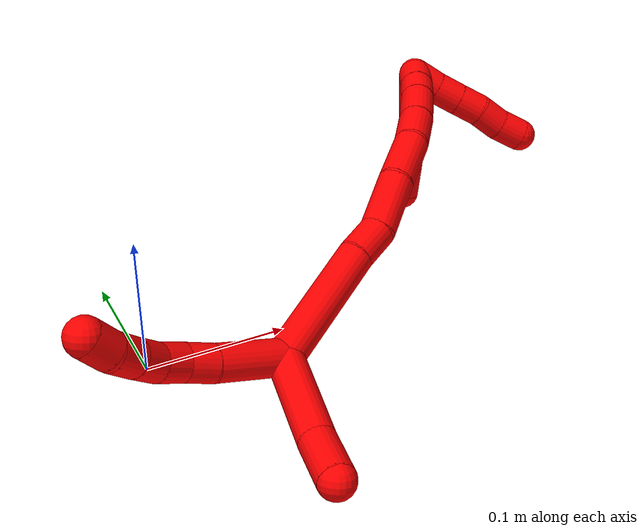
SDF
<sdf version="1.7">
 <world name="default">
  <model name="2">
   <static>0</static>
   <link name="2">
    <collision name="collision-cylinder-e_1_2_8">
     <pose>-0.024255 0.004829 0.001104 -1.34606 -1.36933 1.15393</pose>
     <geometry><cylinder><radius>0.0125</radius><length>0.049512</length></cylinder></geometry>
     <surface>
      <friction><ode><mu>1.16</mu><mu2>1.16</mu2><slip1>0</slip1><slip2>0</slip2></ode></friction>
      <contact><ode><kp>1e+06</kp><kd>1</kd><max_vel>0</max_vel><min_depth>0.001</min_depth></ode></contact>
     </surface>
    </collision>
    <visual name="visual-cylinder-e_1_2_8">
     <pose>-0.024255 0.004829 0.001104 -1.34606 -1.36933 1.15393</pose>
     <geometry><cylinder><radius>0.0125</radius><length>0.049512</length></cylinder></geometry>
     <material><ambient>1 0 0 1</ambient></material>
    </visual>
    <collision name="collision-cylinder-e_2_8_9">
     <pose>-0.058228 0.012166 0.00361 -1.06094 -1.28333 0.826054</pose>
     <geometry><cylinder><radius>0.0125</radius><length>0.020268</length></cylinder></geometry>
     <surface>
      <friction><ode><mu>1.16</mu><mu2>1.16</mu2><slip1>0</slip1><slip2>0</slip2></ode></friction>
      <contact><ode><kp>1e+06</kp><kd>1</kd><max_vel>0</max_vel><min_depth>0.001</min_depth></ode></contact>
     </surface>
    </collision>
    <visual name="visual-cylinder-e_2_8_9">
     <pose>-0.058228 0.012166 0.00361 -1.06094 -1.28333 0.826054</pose>
     <geometry><cylinder><radius>0.0125</radius><length>0.020268</length></cylinder></geometry>
     <material><ambient>1 0 0 1</ambient></material>
    </visual>
    <collision name="collision-cylinder-e_3_9_10">
     <pose>-0.077812 0.014669 0.006763 0.00283 -1.39514 -0.002372</pose>
     <geometry><cylinder><radius>0.0125</radius><length>0.020038</length></cylinder></geometry>
     <surface>
      <friction><ode><mu>1.16</mu><mu2>1.16</mu2><slip1>0</slip1><slip2>0</slip2></ode></friction>
      <contact><ode><kp>1e+06</kp><kd>1</kd><max_vel>0</max_vel><min_depth>0.001</min_depth></ode></contact>
     </surface>
    </collision>
    <visual name="visual-cylinder-e_3_9_10">
     <pose>-0.077812 0.014669 0.006763 0.00283 -1.39514 -0.002372</pose>
     <geometry><cylinder><radius>0.0125</radius><length>0.020038</length></cylinder></geometry>
     <material><ambient>1 0 0 1</ambient></material>
    </visual>
    <collision name="collision-cylinder-e_4_10_11">
     <pose>-0.096832 0.012633 0.012169 0.507286 -1.14243 -0.330169</pose>
     <geometry><cylinder><radius>0.0125</radius><length>0.020131</length></cylinder></geometry>
     <surface>
      <friction><ode><mu>1.16</mu><mu2>1.16</mu2><slip1>0</slip1><slip2>0</slip2></ode></friction>
      <contact><ode><kp>1e+06</kp><kd>1</kd><max_vel>0</max_vel><min_depth>0.001</min_depth></ode></contact>
     </surface>
    </collision>
    <visual name="visual-cylinder-e_4_10_11">
     <pose>-0.096832 0.012633 0.012169 0.507286 -1.14243 -0.330169</pose>
     <geometry><cylinder><radius>0.0125</radius><length>0.020131</length></cylinder></geometry>
     <material><ambient>1 0 0 1</ambient></material>
    </visual>
    <collision name="collision-cylinder-e_5_11_12">
     <pose>-0.114983 0.008765 0.0198 0.432751 -1.11762 -0.273187</pose>
     <geometry><cylinder><radius>0.0125</radius><length>0.02001</length></cylinder></geometry>
     <surface>
      <friction><ode><mu>1.16</mu><mu2>1.16</mu2><slip1>0</slip1><slip2>0</slip2></ode></friction>
      <contact><ode><kp>1e+06</kp><kd>1</kd><max_vel>0</max_vel><min_depth>0.001</min_depth></ode></contact>
     </surface>
    </collision>
    <visual name="visual-cylinder-e_5_11_12">
     <pose>-0.114983 0.008765 0.0198 0.432751 -1.11762 -0.273187</pose>
     <geometry><cylinder><radius>0.0125</radius><length>0.02001</length></cylinder></geometry>
     <material><ambient>1 0 0 1</ambient></material>
    </visual>
    <collision name="collision-cylinder-e_6_12_6">
     <pose>-0.132295 0.006872 0.029366 0.009993 -0.978955 -0.005324</pose>
     <geometry><cylinder><radius>0.0125</radius><length>0.020042</length></cylinder></geometry>
     <surface>
      <friction><ode><mu>1.16</mu><mu2>1.16</mu2><slip1>0</slip1><slip2>0</slip2></ode></friction>
      <contact><ode><kp>1e+06</kp><kd>1</kd><max_vel>0</max_vel><min_depth>0.001</min_depth></ode></contact>
     </surface>
    </collision>
    <visual name="visual-cylinder-e_6_12_6">
     <pose>-0.132295 0.006872 0.029366 0.009993 -0.978955 -0.005324</pose>
     <geometry><cylinder><radius>0.0125</radius><length>0.020042</length></cylinder></geometry>
     <material><ambient>1 0 0 1</ambient></material>
    </visual>
    <collision name="collision-cylinder-e_1_2_13">
     <pose>-0.008402 -0.025544 -0.017759 2.17833 -0.263759 -0.497073</pose>
     <geometry><cylinder><radius>0.0125</radius><length>0.064451</length></cylinder></geometry>
     <surface>
      <friction><ode><mu>1.16</mu><mu2>1.16</mu2><slip1>0</slip1><slip2>0</slip2></ode></friction>
      <contact><ode><kp>1e+06</kp><kd>1</kd><max_vel>0</max_vel><min_depth>0.001</min_depth></ode></contact>
     </surface>
    </collision>
    <visual name="visual-cylinder-e_1_2_13">
     <pose>-0.008402 -0.025544 -0.017759 2.17833 -0.263759 -0.497073</pose>
     <geometry><cylinder><radius>0.0125</radius><length>0.064451</length></cylinder></geometry>
     <material><ambient>1 0 0 1</ambient></material>
    </visual>
    <collision name="collision-cylinder-e_2_13_5">
     <pose>-0.02303 -0.066674 -0.04137 1.92992 -0.357907 -0.510836</pose>
     <geometry><cylinder><radius>0.0125</radius><length>0.035549</length></cylinder></geometry>
     <surface>
      <friction><ode><mu>1.16</mu><mu2>1.16</mu2><slip1>0</slip1><slip2>0</slip2></ode></friction>
      <contact><ode><kp>1e+06</kp><kd>1</kd><max_vel>0</max_vel><min_depth>0.001</min_depth></ode></contact>
     </surface>
    </collision>
    <visual name="visual-cylinder-e_2_13_5">
     <pose>-0.02303 -0.066674 -0.04137 1.92992 -0.357907 -0.510836</pose>
     <geometry><cylinder><radius>0.0125</radius><length>0.035549</length></cylinder></geometry>
     <material><ambient>1 0 0 1</ambient></material>
    </visual>
    <collision name="collision-cylinder-e_1_2_14">
     <pose>0.033775 0.004331 0.028216 -0.152287 0.869087 -0.070789</pose>
     <geometry><cylinder><radius>0.0125</radius><length>0.088445</length></cylinder></geometry>
     <surface>
      <friction><ode><mu>1.16</mu><mu2>1.16</mu2><slip1>0</slip1><slip2>0</slip2></ode></friction>
      <contact><ode><kp>1e+06</kp><kd>1</kd><max_vel>0</max_vel><min_depth>0.001</min_depth></ode></contact>
     </surface>
    </collision>
    <visual name="visual-cylinder-e_1_2_14">
     <pose>0.033775 0.004331 0.028216 -0.152287 0.869087 -0.070789</pose>
     <geometry><cylinder><radius>0.0125</radius><length>0.088445</length></cylinder></geometry>
     <material><ambient>1 0 0 1</ambient></material>
    </visual>
    <collision name="collision-cylinder-e_2_14_15">
     <pose>0.078403 0.009781 0.063507 -0.157068 0.987495 -0.084659</pose>
     <geometry><cylinder><radius>0.0125</radius><length>0.026009</length></cylinder></geometry>
     <surface>
      <friction><ode><mu>1.16</mu><mu2>1.16</mu2><slip1>0</slip1><slip2>0</slip2></ode></friction>
      <contact><ode><kp>1e+06</kp><kd>1</kd><max_vel>0</max_vel><min_depth>0.001</min_depth></ode></contact>
     </surface>
    </collision>
    <visual name="visual-cylinder-e_2_14_15">
     <pose>0.078403 0.009781 0.063507 -0.157068 0.987495 -0.084659</pose>
     <geometry><cylinder><radius>0.0125</radius><length>0.026009</length></cylinder></geometry>
     <material><ambient>1 0 0 1</ambient></material>
    </visual>
    <collision name="collision-cylinder-e_3_15_16">
     <pose>0.103526 0.017029 0.085749 -0.383913 0.717265 -0.145444</pose>
     <geometry><cylinder><radius>0.0125</radius><length>0.043413</length></cylinder></geometry>
     <surface>
      <friction><ode><mu>1.16</mu><mu2>1.16</mu2><slip1>0</slip1><slip2>0</slip2></ode></friction>
      <contact><ode><kp>1e+06</kp><kd>1</kd><max_vel>0</max_vel><min_depth>0.001</min_depth></ode></contact>
     </surface>
    </collision>
    <visual name="visual-cylinder-e_3_15_16">
     <pose>0.103526 0.017029 0.085749 -0.383913 0.717265 -0.145444</pose>
     <geometry><cylinder><radius>0.0125</radius><length>0.043413</length></cylinder></geometry>
     <material><ambient>1 0 0 1</ambient></material>
    </visual>
    <collision name="collision-cylinder-e_4_16_17">
     <pose>0.132287 0.030321 0.112622 -0.549248 0.812623 -0.241264</pose>
     <geometry><cylinder><radius>0.0125</radius><length>0.039921</length></cylinder></geometry>
     <surface>
      <friction><ode><mu>1.16</mu><mu2>1.16</mu2><slip1>0</slip1><slip2>0</slip2></ode></friction>
      <contact><ode><kp>1e+06</kp><kd>1</kd><max_vel>0</max_vel><min_depth>0.001</min_depth></ode></contact>
     </surface>
    </collision>
    <visual name="visual-cylinder-e_4_16_17">
     <pose>0.132287 0.030321 0.112622 -0.549248 0.812623 -0.241264</pose>
     <geometry><cylinder><radius>0.0125</radius><length>0.039921</length></cylinder></geometry>
     <material><ambient>1 0 0 1</ambient></material>
    </visual>
    <collision name="collision-cylinder-e_5_17_18">
     <pose>0.157826 0.045779 0.131586 -0.851861 0.786531 -0.37211</pose>
     <geometry><cylinder><radius>0.0125</radius><length>0.031208</length></cylinder></geometry>
     <surface>
      <friction><ode><mu>1.16</mu><mu2>1.16</mu2><slip1>0</slip1><slip2>0</slip2></ode></friction>
      <contact><ode><kp>1e+06</kp><kd>1</kd><max_vel>0</max_vel><min_depth>0.001</min_depth></ode></contact>
     </surface>
    </collision>
    <visual name="visual-cylinder-e_5_17_18">
     <pose>0.157826 0.045779 0.131586 -0.851861 0.786531 -0.37211</pose>
     <geometry><cylinder><radius>0.0125</radius><length>0.031208</length></cylinder></geometry>
     <material><ambient>1 0 0 1</ambient></material>
    </visual>
    <collision name="collision-cylinder-e_6_18_19">
     <pose>0.179053 0.063435 0.145735 -0.936341 0.719279 -0.375767</pose>
     <geometry><cylinder><radius>0.0125</radius><length>0.030906</length></cylinder></geometry>
     <surface>
      <friction><ode><mu>1.16</mu><mu2>1.16</mu2><slip1>0</slip1><slip2>0</slip2></ode></friction>
      <contact><ode><kp>1e+06</kp><kd>1</kd><max_vel>0</max_vel><min_depth>0.001</min_depth></ode></contact>
     </surface>
    </collision>
    <visual name="visual-cylinder-e_6_18_19">
     <pose>0.179053 0.063435 0.145735 -0.936341 0.719279 -0.375767</pose>
     <geometry><cylinder><radius>0.0125</radius><length>0.030906</length></cylinder></geometry>
     <material><ambient>1 0 0 1</ambient></material>
    </visual>
    <collision name="collision-cylinder-e_7_19_20">
     <pose>0.19554 0.079381 0.156824 -1.00311 0.679385 -0.382803</pose>
     <geometry><cylinder><radius>0.0125</radius><length>0.020071</length></cylinder></geometry>
     <surface>
      <friction><ode><mu>1.16</mu><mu2>1.16</mu2><slip1>0</slip1><slip2>0</slip2></ode></friction>
      <contact><ode><kp>1e+06</kp><kd>1</kd><max_vel>0</max_vel><min_depth>0.001</min_depth></ode></contact>
     </surface>
    </collision>
    <visual name="visual-cylinder-e_7_19_20">
     <pose>0.19554 0.079381 0.156824 -1.00311 0.679385 -0.382803</pose>
     <geometry><cylinder><radius>0.0125</radius><length>0.020071</length></cylinder></geometry>
     <material><ambient>1 0 0 1</ambient></material>
    </visual>
    <collision name="collision-cylinder-e_8_20_1">
     <pose>0.207952 0.092847 0.164972 -1.04977 0.655815 -0.389003</pose>
     <geometry><cylinder><radius>0.0125</radius><length>0.020028</length></cylinder></geometry>
     <surface>
      <friction><ode><mu>1.16</mu><mu2>1.16</mu2><slip1>0</slip1><slip2>0</slip2></ode></friction>
      <contact><ode><kp>1e+06</kp><kd>1</kd><max_vel>0</max_vel><min_depth>0.001</min_depth></ode></contact>
     </surface>
    </collision>
    <visual name="visual-cylinder-e_8_20_1">
     <pose>0.207952 0.092847 0.164972 -1.04977 0.655815 -0.389003</pose>
     <geometry><cylinder><radius>0.0125</radius><length>0.020028</length></cylinder></geometry>
     <material><ambient>1 0 0 1</ambient></material>
    </visual>
    <collision name="collision-cylinder-e_1_1_21">
     <pose>0.221102 0.09461 0.164006 2.3359 0.781525 1.5369</pose>
     <geometry><cylinder><radius>0.0125</radius><length>0.02</length></cylinder></geometry>
     <surface>
      <friction><ode><mu>1.16</mu><mu2>1.16</mu2><slip1>0</slip1><slip2>0</slip2></ode></friction>
      <contact><ode><kp>1e+06</kp><kd>1</kd><max_vel>0</max_vel><min_depth>0.001</min_depth></ode></contact>
     </surface>
    </collision>
    <visual name="visual-cylinder-e_1_1_21">
     <pose>0.221102 0.09461 0.164006 2.3359 0.781525 1.5369</pose>
     <geometry><cylinder><radius>0.0125</radius><length>0.02</length></cylinder></geometry>
     <material><ambient>1 0 0 1</ambient></material>
    </visual>
    <collision name="collision-cylinder-e_2_21_22">
     <pose>0.23534 0.083995 0.154842 2.22885 0.803054 1.42612</pose>
     <geometry><cylinder><radius>0.0125</radius><length>0.02</length></cylinder></geometry>
     <surface>
      <friction><ode><mu>1.16</mu><mu2>1.16</mu2><slip1>0</slip1><slip2>0</slip2></ode></friction>
      <contact><ode><kp>1e+06</kp><kd>1</kd><max_vel>0</max_vel><min_depth>0.001</min_depth></ode></contact>
     </surface>
    </collision>
    <visual name="visual-cylinder-e_2_21_22">
     <pose>0.23534 0.083995 0.154842 2.22885 0.803054 1.42612</pose>
     <geometry><cylinder><radius>0.0125</radius><length>0.02</length></cylinder></geometry>
     <material><ambient>1 0 0 1</ambient></material>
    </visual>
    <collision name="collision-cylinder-e_3_22_23">
     <pose>0.249778 0.073 0.146437 2.2181 0.810033 1.4223</pose>
     <geometry><cylinder><radius>0.0125</radius><length>0.02</length></cylinder></geometry>
     <surface>
      <friction><ode><mu>1.16</mu><mu2>1.16</mu2><slip1>0</slip1><slip2>0</slip2></ode></friction>
      <contact><ode><kp>1e+06</kp><kd>1</kd><max_vel>0</max_vel><min_depth>0.001</min_depth></ode></contact>
     </surface>
    </collision>
    <visual name="visual-cylinder-e_3_22_23">
     <pose>0.249778 0.073 0.146437 2.2181 0.810033 1.4223</pose>
     <geometry><cylinder><radius>0.0125</radius><length>0.02</length></cylinder></geometry>
     <material><ambient>1 0 0 1</ambient></material>
    </visual>
    <collision name="collision-cylinder-e_4_23_24">
     <pose>0.264222 0.06318 0.136849 2.46955 0.803936 1.76607</pose>
     <geometry><cylinder><radius>0.0125</radius><length>0.02</length></cylinder></geometry>
     <surface>
      <friction><ode><mu>1.16</mu><mu2>1.16</mu2><slip1>0</slip1><slip2>0</slip2></ode></friction>
      <contact><ode><kp>1e+06</kp><kd>1</kd><max_vel>0</max_vel><min_depth>0.001</min_depth></ode></contact>
     </surface>
    </collision>
    <visual name="visual-cylinder-e_4_23_24">
     <pose>0.264222 0.06318 0.136849 2.46955 0.803936 1.76607</pose>
     <geometry><cylinder><radius>0.0125</radius><length>0.02</length></cylinder></geometry>
     <material><ambient>1 0 0 1</ambient></material>
    </visual>
    <collision name="collision-cylinder-e_5_24_4">
     <pose>0.279021 0.053698 0.127466 2.22434 0.862921 1.50092</pose>
     <geometry><cylinder><radius>0.0125</radius><length>0.02</length></cylinder></geometry>
     <surface>
      <friction><ode><mu>1.16</mu><mu2>1.16</mu2><slip1>0</slip1><slip2>0</slip2></ode></friction>
      <contact><ode><kp>1e+06</kp><kd>1</kd><max_vel>0</max_vel><min_depth>0.001</min_depth></ode></contact>
     </surface>
    </collision>
    <visual name="visual-cylinder-e_5_24_4">
     <pose>0.279021 0.053698 0.127466 2.22434 0.862921 1.50092</pose>
     <geometry><cylinder><radius>0.0125</radius><length>0.02</length></cylinder></geometry>
     <material><ambient>1 0 0 1</ambient></material>
    </visual>
    <collision name="collision-cylinder-e_1_1_25">
     <pose>0.216201 0.100364 0.151439 -3.10537 0.12187 -2.56434</pose>
     <geometry><cylinder><radius>0.0125</radius><length>0.035252</length></cylinder></geometry>
     <surface>
      <friction><ode><mu>1.16</mu><mu2>1.16</mu2><slip1>0</slip1><slip2>0</slip2></ode></friction>
      <contact><ode><kp>1e+06</kp><kd>1</kd><max_vel>0</max_vel><min_depth>0.001</min_depth></ode></contact>
     </surface>
    </collision>
    <visual name="visual-cylinder-e_1_1_25">
     <pose>0.216201 0.100364 0.151439 -3.10537 0.12187 -2.56434</pose>
     <geometry><cylinder><radius>0.0125</radius><length>0.035252</length></cylinder></geometry>
     <material><ambient>1 0 0 1</ambient></material>
    </visual>
    <collision name="collision-cylinder-e_2_25_26">
     <pose>0.218992 0.103764 0.123728 -2.87738 0.061135 -0.452349</pose>
     <geometry><cylinder><radius>0.0125</radius><length>0.021229</length></cylinder></geometry>
     <surface>
      <friction><ode><mu>1.16</mu><mu2>1.16</mu2><slip1>0</slip1><slip2>0</slip2></ode></friction>
      <contact><ode><kp>1e+06</kp><kd>1</kd><max_vel>0</max_vel><min_depth>0.001</min_depth></ode></contact>
     </surface>
    </collision>
    <visual name="visual-cylinder-e_2_25_26">
     <pose>0.218992 0.103764 0.123728 -2.87738 0.061135 -0.452349</pose>
     <geometry><cylinder><radius>0.0125</radius><length>0.021229</length></cylinder></geometry>
     <material><ambient>1 0 0 1</ambient></material>
    </visual>
    <collision name="collision-cylinder-e_3_26_27">
     <pose>0.220526 0.108249 0.103539 -2.97077 0.087363 -0.944041</pose>
     <geometry><cylinder><radius>0.0125</radius><length>0.020295</length></cylinder></geometry>
     <surface>
      <friction><ode><mu>1.16</mu><mu2>1.16</mu2><slip1>0</slip1><slip2>0</slip2></ode></friction>
      <contact><ode><kp>1e+06</kp><kd>1</kd><max_vel>0</max_vel><min_depth>0.001</min_depth></ode></contact>
     </surface>
    </collision>
    <visual name="visual-cylinder-e_3_26_27">
     <pose>0.220526 0.108249 0.103539 -2.97077 0.087363 -0.944041</pose>
     <geometry><cylinder><radius>0.0125</radius><length>0.020295</length></cylinder></geometry>
     <material><ambient>1 0 0 1</ambient></material>
    </visual>
    <collision name="collision-cylinder-e_4_27_3">
     <pose>0.222893 0.112702 0.08239 -2.90185 0.127928 -0.977485</pose>
     <geometry><cylinder><radius>0.0125</radius><length>0.023224</length></cylinder></geometry>
     <surface>
      <friction><ode><mu>1.16</mu><mu2>1.16</mu2><slip1>0</slip1><slip2>0</slip2></ode></friction>
      <contact><ode><kp>1e+06</kp><kd>1</kd><max_vel>0</max_vel><min_depth>0.001</min_depth></ode></contact>
     </surface>
    </collision>
    <visual name="visual-cylinder-e_4_27_3">
     <pose>0.222893 0.112702 0.08239 -2.90185 0.127928 -0.977485</pose>
     <geometry><cylinder><radius>0.0125</radius><length>0.023224</length></cylinder></geometry>
     <material><ambient>1 0 0 1</ambient></material>
    </visual>
    <collision name="collision-sphere-3">
     <pose>0.224374 0.115437 0.071202 0 -0 0</pose>
     <geometry><sphere><radius>0.0125</radius></sphere></geometry>
     <surface>
      <friction><ode><mu>1.16</mu><mu2>1.16</mu2><slip1>0</slip1><slip2>0</slip2></ode></friction>
      <contact><ode><kp>1e+06</kp><kd>1</kd><max_vel>0</max_vel><min_depth>0.001</min_depth></ode></contact>
     </surface>
    </collision>
    <visual name="visual-sphere-3">
     <pose>0.224374 0.115437 0.071202 0 -0 0</pose>
     <geometry><sphere><radius>0.0125</radius></sphere></geometry>
     <material><ambient>1 0 0 1</ambient></material>
    </visual>
    <collision name="collision-sphere-27">
     <pose>0.221412 0.109968 0.093578 0 -0 0</pose>
     <geometry><sphere><radius>0.0125</radius></sphere></geometry>
     <surface>
      <friction><ode><mu>1.16</mu><mu2>1.16</mu2><slip1>0</slip1><slip2>0</slip2></ode></friction>
      <contact><ode><kp>1e+06</kp><kd>1</kd><max_vel>0</max_vel><min_depth>0.001</min_depth></ode></contact>
     </surface>
    </collision>
    <visual name="visual-sphere-27">
     <pose>0.221412 0.109968 0.093578 0 -0 0</pose>
     <geometry><sphere><radius>0.0125</radius></sphere></geometry>
     <material><ambient>1 0 0 1</ambient></material>
    </visual>
    <collision name="collision-sphere-26">
     <pose>0.219641 0.106531 0.113501 0 -0 0</pose>
     <geometry><sphere><radius>0.0125</radius></sphere></geometry>
     <surface>
      <friction><ode><mu>1.16</mu><mu2>1.16</mu2><slip1>0</slip1><slip2>0</slip2></ode></friction>
      <contact><ode><kp>1e+06</kp><kd>1</kd><max_vel>0</max_vel><min_depth>0.001</min_depth></ode></contact>
     </surface>
    </collision>
    <visual name="visual-sphere-26">
     <pose>0.219641 0.106531 0.113501 0 -0 0</pose>
     <geometry><sphere><radius>0.0125</radius></sphere></geometry>
     <material><ambient>1 0 0 1</ambient></material>
    </visual>
    <collision name="collision-sphere-25">
     <pose>0.218344 0.100997 0.133955 0 -0 0</pose>
     <geometry><sphere><radius>0.0125</radius></sphere></geometry>
     <surface>
      <friction><ode><mu>1.16</mu><mu2>1.16</mu2><slip1>0</slip1><slip2>0</slip2></ode></friction>
      <contact><ode><kp>1e+06</kp><kd>1</kd><max_vel>0</max_vel><min_depth>0.001</min_depth></ode></contact>
     </surface>
    </collision>
    <visual name="visual-sphere-25">
     <pose>0.218344 0.100997 0.133955 0 -0 0</pose>
     <geometry><sphere><radius>0.0125</radius></sphere></geometry>
     <material><ambient>1 0 0 1</ambient></material>
    </visual>
    <collision name="collision-sphere-4">
     <pose>0.286618 0.048535 0.123512 0 -0 0</pose>
     <geometry><sphere><radius>0.0125</radius></sphere></geometry>
     <surface>
      <friction><ode><mu>1.16</mu><mu2>1.16</mu2><slip1>0</slip1><slip2>0</slip2></ode></friction>
      <contact><ode><kp>1e+06</kp><kd>1</kd><max_vel>0</max_vel><min_depth>0.001</min_depth></ode></contact>
     </surface>
    </collision>
    <visual name="visual-sphere-4">
     <pose>0.286618 0.048535 0.123512 0 -0 0</pose>
     <geometry><sphere><radius>0.0125</radius></sphere></geometry>
     <material><ambient>1 0 0 1</ambient></material>
    </visual>
    <collision name="collision-sphere-24">
     <pose>0.271423 0.05886 0.131419 0 -0 0</pose>
     <geometry><sphere><radius>0.0125</radius></sphere></geometry>
     <surface>
      <friction><ode><mu>1.16</mu><mu2>1.16</mu2><slip1>0</slip1><slip2>0</slip2></ode></friction>
      <contact><ode><kp>1e+06</kp><kd>1</kd><max_vel>0</max_vel><min_depth>0.001</min_depth></ode></contact>
     </surface>
    </collision>
    <visual name="visual-sphere-24">
     <pose>0.271423 0.05886 0.131419 0 -0 0</pose>
     <geometry><sphere><radius>0.0125</radius></sphere></geometry>
     <material><ambient>1 0 0 1</ambient></material>
    </visual>
    <collision name="collision-sphere-23">
     <pose>0.257021 0.0675 0.142279 0 -0 0</pose>
     <geometry><sphere><radius>0.0125</radius></sphere></geometry>
     <surface>
      <friction><ode><mu>1.16</mu><mu2>1.16</mu2><slip1>0</slip1><slip2>0</slip2></ode></friction>
      <contact><ode><kp>1e+06</kp><kd>1</kd><max_vel>0</max_vel><min_depth>0.001</min_depth></ode></contact>
     </surface>
    </collision>
    <visual name="visual-sphere-23">
     <pose>0.257021 0.0675 0.142279 0 -0 0</pose>
     <geometry><sphere><radius>0.0125</radius></sphere></geometry>
     <material><ambient>1 0 0 1</ambient></material>
    </visual>
    <collision name="collision-sphere-22">
     <pose>0.242535 0.0785 0.150595 0 -0 0</pose>
     <geometry><sphere><radius>0.0125</radius></sphere></geometry>
     <surface>
      <friction><ode><mu>1.16</mu><mu2>1.16</mu2><slip1>0</slip1><slip2>0</slip2></ode></friction>
      <contact><ode><kp>1e+06</kp><kd>1</kd><max_vel>0</max_vel><min_depth>0.001</min_depth></ode></contact>
     </surface>
    </collision>
    <visual name="visual-sphere-22">
     <pose>0.242535 0.0785 0.150595 0 -0 0</pose>
     <geometry><sphere><radius>0.0125</radius></sphere></geometry>
     <material><ambient>1 0 0 1</ambient></material>
    </visual>
    <collision name="collision-sphere-21">
     <pose>0.228145 0.08949 0.15909 0 -0 0</pose>
     <geometry><sphere><radius>0.0125</radius></sphere></geometry>
     <surface>
      <friction><ode><mu>1.16</mu><mu2>1.16</mu2><slip1>0</slip1><slip2>0</slip2></ode></friction>
      <contact><ode><kp>1e+06</kp><kd>1</kd><max_vel>0</max_vel><min_depth>0.001</min_depth></ode></contact>
     </surface>
    </collision>
    <visual name="visual-sphere-21">
     <pose>0.228145 0.08949 0.15909 0 -0 0</pose>
     <geometry><sphere><radius>0.0125</radius></sphere></geometry>
     <material><ambient>1 0 0 1</ambient></material>
    </visual>
    <collision name="collision-sphere-1">
     <pose>0.214058 0.09973 0.168923 0 -0 0</pose>
     <geometry><sphere><radius>0.0125</radius></sphere></geometry>
     <surface>
      <friction><ode><mu>1.16</mu><mu2>1.16</mu2><slip1>0</slip1><slip2>0</slip2></ode></friction>
      <contact><ode><kp>1e+06</kp><kd>1</kd><max_vel>0</max_vel><min_depth>0.001</min_depth></ode></contact>
     </surface>
    </collision>
    <visual name="visual-sphere-1">
     <pose>0.214058 0.09973 0.168923 0 -0 0</pose>
     <geometry><sphere><radius>0.0125</radius></sphere></geometry>
     <material><ambient>1 0 0 1</ambient></material>
    </visual>
    <collision name="collision-sphere-12">
     <pose>-0.123978 0.006928 0.023776 0 -0 0</pose>
     <geometry><sphere><radius>0.0125</radius></sphere></geometry>
     <surface>
      <friction><ode><mu>1.16</mu><mu2>1.16</mu2><slip1>0</slip1><slip2>0</slip2></ode></friction>
      <contact><ode><kp>1e+06</kp><kd>1</kd><max_vel>0</max_vel><min_depth>0.001</min_depth></ode></contact>
     </surface>
    </collision>
    <visual name="visual-sphere-12">
     <pose>-0.123978 0.006928 0.023776 0 -0 0</pose>
     <geometry><sphere><radius>0.0125</radius></sphere></geometry>
     <material><ambient>1 0 0 1</ambient></material>
    </visual>
    <collision name="collision-sphere-11">
     <pose>-0.105988 0.010602 0.015823 0 -0 0</pose>
     <geometry><sphere><radius>0.0125</radius></sphere></geometry>
     <surface>
      <friction><ode><mu>1.16</mu><mu2>1.16</mu2><slip1>0</slip1><slip2>0</slip2></ode></friction>
      <contact><ode><kp>1e+06</kp><kd>1</kd><max_vel>0</max_vel><min_depth>0.001</min_depth></ode></contact>
     </surface>
    </collision>
    <visual name="visual-sphere-11">
     <pose>-0.105988 0.010602 0.015823 0 -0 0</pose>
     <geometry><sphere><radius>0.0125</radius></sphere></geometry>
     <material><ambient>1 0 0 1</ambient></material>
    </visual>
    <collision name="collision-sphere-10">
     <pose>-0.087677 0.014664 0.008514 0 -0 0</pose>
     <geometry><sphere><radius>0.0125</radius></sphere></geometry>
     <surface>
      <friction><ode><mu>1.16</mu><mu2>1.16</mu2><slip1>0</slip1><slip2>0</slip2></ode></friction>
      <contact><ode><kp>1e+06</kp><kd>1</kd><max_vel>0</max_vel><min_depth>0.001</min_depth></ode></contact>
     </surface>
    </collision>
    <visual name="visual-sphere-10">
     <pose>-0.087677 0.014664 0.008514 0 -0 0</pose>
     <geometry><sphere><radius>0.0125</radius></sphere></geometry>
     <material><ambient>1 0 0 1</ambient></material>
    </visual>
    <collision name="collision-sphere-9">
     <pose>-0.067947 0.014674 0.005012 0 -0 0</pose>
     <geometry><sphere><radius>0.0125</radius></sphere></geometry>
     <surface>
      <friction><ode><mu>1.16</mu><mu2>1.16</mu2><slip1>0</slip1><slip2>0</slip2></ode></friction>
      <contact><ode><kp>1e+06</kp><kd>1</kd><max_vel>0</max_vel><min_depth>0.001</min_depth></ode></contact>
     </surface>
    </collision>
    <visual name="visual-sphere-9">
     <pose>-0.067947 0.014674 0.005012 0 -0 0</pose>
     <geometry><sphere><radius>0.0125</radius></sphere></geometry>
     <material><ambient>1 0 0 1</ambient></material>
    </visual>
    <collision name="collision-sphere-2">
     <geometry><sphere><radius>0.0125</radius></sphere></geometry>
     <surface>
      <friction><ode><mu>1.16</mu><mu2>1.16</mu2><slip1>0</slip1><slip2>0</slip2></ode></friction>
      <contact><ode><kp>1e+06</kp><kd>1</kd><max_vel>0</max_vel><min_depth>0.001</min_depth></ode></contact>
     </surface>
    </collision>
    <visual name="visual-sphere-2">
     <geometry><sphere><radius>0.0125</radius></sphere></geometry>
     <material><ambient>1 0 0 1</ambient></material>
    </visual>
    <collision name="collision-sphere-19">
     <pose>0.189234 0.072798 0.152626 0 -0 0</pose>
     <geometry><sphere><radius>0.0125</radius></sphere></geometry>
     <surface>
      <friction><ode><mu>1.16</mu><mu2>1.16</mu2><slip1>0</slip1><slip2>0</slip2></ode></friction>
      <contact><ode><kp>1e+06</kp><kd>1</kd><max_vel>0</max_vel><min_depth>0.001</min_depth></ode></contact>
     </surface>
    </collision>
    <visual name="visual-sphere-19">
     <pose>0.189234 0.072798 0.152626 0 -0 0</pose>
     <geometry><sphere><radius>0.0125</radius></sphere></geometry>
     <material><ambient>1 0 0 1</ambient></material>
    </visual>
    <collision name="collision-sphere-8">
     <pose>-0.04851 0.009658 0.002208 0 -0 0</pose>
     <geometry><sphere><radius>0.0125</radius></sphere></geometry>
     <surface>
      <friction><ode><mu>1.16</mu><mu2>1.16</mu2><slip1>0</slip1><slip2>0</slip2></ode></friction>
      <contact><ode><kp>1e+06</kp><kd>1</kd><max_vel>0</max_vel><min_depth>0.001</min_depth></ode></contact>
     </surface>
    </collision>
    <visual name="visual-sphere-8">
     <pose>-0.04851 0.009658 0.002208 0 -0 0</pose>
     <geometry><sphere><radius>0.0125</radius></sphere></geometry>
     <material><ambient>1 0 0 1</ambient></material>
    </visual>
    <collision name="collision-sphere-6">
     <pose>-0.140611 0.006816 0.034957 0 -0 0</pose>
     <geometry><sphere><radius>0.0125</radius></sphere></geometry>
     <surface>
      <friction><ode><mu>1.16</mu><mu2>1.16</mu2><slip1>0</slip1><slip2>0</slip2></ode></friction>
      <contact><ode><kp>1e+06</kp><kd>1</kd><max_vel>0</max_vel><min_depth>0.001</min_depth></ode></contact>
     </surface>
    </collision>
    <visual name="visual-sphere-6">
     <pose>-0.140611 0.006816 0.034957 0 -0 0</pose>
     <geometry><sphere><radius>0.0125</radius></sphere></geometry>
     <material><ambient>1 0 0 1</ambient></material>
    </visual>
    <collision name="collision-sphere-13">
     <pose>-0.016803 -0.051088 -0.035519 0 -0 0</pose>
     <geometry><sphere><radius>0.0125</radius></sphere></geometry>
     <surface>
      <friction><ode><mu>1.16</mu><mu2>1.16</mu2><slip1>0</slip1><slip2>0</slip2></ode></friction>
      <contact><ode><kp>1e+06</kp><kd>1</kd><max_vel>0</max_vel><min_depth>0.001</min_depth></ode></contact>
     </surface>
    </collision>
    <visual name="visual-sphere-13">
     <pose>-0.016803 -0.051088 -0.035519 0 -0 0</pose>
     <geometry><sphere><radius>0.0125</radius></sphere></geometry>
     <material><ambient>1 0 0 1</ambient></material>
    </visual>
    <collision name="collision-sphere-5">
     <pose>-0.029256 -0.08226 -0.047221 0 -0 0</pose>
     <geometry><sphere><radius>0.0125</radius></sphere></geometry>
     <surface>
      <friction><ode><mu>1.16</mu><mu2>1.16</mu2><slip1>0</slip1><slip2>0</slip2></ode></friction>
      <contact><ode><kp>1e+06</kp><kd>1</kd><max_vel>0</max_vel><min_depth>0.001</min_depth></ode></contact>
     </surface>
    </collision>
    <visual name="visual-sphere-5">
     <pose>-0.029256 -0.08226 -0.047221 0 -0 0</pose>
     <geometry><sphere><radius>0.0125</radius></sphere></geometry>
     <material><ambient>1 0 0 1</ambient></material>
    </visual>
    <collision name="collision-sphere-14">
     <pose>0.067549 0.008661 0.056433 0 -0 0</pose>
     <geometry><sphere><radius>0.0125</radius></sphere></geometry>
     <surface>
      <friction><ode><mu>1.16</mu><mu2>1.16</mu2><slip1>0</slip1><slip2>0</slip2></ode></friction>
      <contact><ode><kp>1e+06</kp><kd>1</kd><max_vel>0</max_vel><min_depth>0.001</min_depth></ode></contact>
     </surface>
    </collision>
    <visual name="visual-sphere-14">
     <pose>0.067549 0.008661 0.056433 0 -0 0</pose>
     <geometry><sphere><radius>0.0125</radius></sphere></geometry>
     <material><ambient>1 0 0 1</ambient></material>
    </visual>
    <collision name="collision-sphere-15">
     <pose>0.089257 0.010902 0.070582 0 -0 0</pose>
     <geometry><sphere><radius>0.0125</radius></sphere></geometry>
     <surface>
      <friction><ode><mu>1.16</mu><mu2>1.16</mu2><slip1>0</slip1><slip2>0</slip2></ode></friction>
      <contact><ode><kp>1e+06</kp><kd>1</kd><max_vel>0</max_vel><min_depth>0.001</min_depth></ode></contact>
     </surface>
    </collision>
    <visual name="visual-sphere-15">
     <pose>0.089257 0.010902 0.070582 0 -0 0</pose>
     <geometry><sphere><radius>0.0125</radius></sphere></geometry>
     <material><ambient>1 0 0 1</ambient></material>
    </visual>
    <collision name="collision-sphere-16">
     <pose>0.117794 0.023156 0.100916 0 -0 0</pose>
     <geometry><sphere><radius>0.0125</radius></sphere></geometry>
     <surface>
      <friction><ode><mu>1.16</mu><mu2>1.16</mu2><slip1>0</slip1><slip2>0</slip2></ode></friction>
      <contact><ode><kp>1e+06</kp><kd>1</kd><max_vel>0</max_vel><min_depth>0.001</min_depth></ode></contact>
     </surface>
    </collision>
    <visual name="visual-sphere-16">
     <pose>0.117794 0.023156 0.100916 0 -0 0</pose>
     <geometry><sphere><radius>0.0125</radius></sphere></geometry>
     <material><ambient>1 0 0 1</ambient></material>
    </visual>
    <collision name="collision-sphere-17">
     <pose>0.14678 0.037485 0.124328 0 -0 0</pose>
     <geometry><sphere><radius>0.0125</radius></sphere></geometry>
     <surface>
      <friction><ode><mu>1.16</mu><mu2>1.16</mu2><slip1>0</slip1><slip2>0</slip2></ode></friction>
      <contact><ode><kp>1e+06</kp><kd>1</kd><max_vel>0</max_vel><min_depth>0.001</min_depth></ode></contact>
     </surface>
    </collision>
    <visual name="visual-sphere-17">
     <pose>0.14678 0.037485 0.124328 0 -0 0</pose>
     <geometry><sphere><radius>0.0125</radius></sphere></geometry>
     <material><ambient>1 0 0 1</ambient></material>
    </visual>
    <collision name="collision-sphere-18">
     <pose>0.168872 0.054072 0.138845 0 -0 0</pose>
     <geometry><sphere><radius>0.0125</radius></sphere></geometry>
     <surface>
      <friction><ode><mu>1.16</mu><mu2>1.16</mu2><slip1>0</slip1><slip2>0</slip2></ode></friction>
      <contact><ode><kp>1e+06</kp><kd>1</kd><max_vel>0</max_vel><min_depth>0.001</min_depth></ode></contact>
     </surface>
    </collision>
    <visual name="visual-sphere-18">
     <pose>0.168872 0.054072 0.138845 0 -0 0</pose>
     <geometry><sphere><radius>0.0125</radius></sphere></geometry>
     <material><ambient>1 0 0 1</ambient></material>
    </visual>
    <collision name="collision-sphere-20">
     <pose>0.201845 0.085963 0.161022 0 -0 0</pose>
     <geometry><sphere><radius>0.0125</radius></sphere></geometry>
     <surface>
      <friction><ode><mu>1.16</mu><mu2>1.16</mu2><slip1>0</slip1><slip2>0</slip2></ode></friction>
      <contact><ode><kp>1e+06</kp><kd>1</kd><max_vel>0</max_vel><min_depth>0.001</min_depth></ode></contact>
     </surface>
    </collision>
    <visual name="visual-sphere-20">
     <pose>0.201845 0.085963 0.161022 0 -0 0</pose>
     <geometry><sphere><radius>0.0125</radius></sphere></geometry>
     <material><ambient>1 0 0 1</ambient></material>
    </visual>
    <inertial>
     <pose>0.090747 0.032912 0.070504 0 -0 0</pose>
     <mass>0.75</mass>
     <inertia><ixx>7.6e-05</ixx><ixy>0</ixy><ixz>0</ixz><iyy>7.7e-05</iyy><iyz>0</iyz><izz>-3.8e-05</izz></inertia>
    </inertial>
   </link>
   <pose>0.070568 -0.069647 0.035551 -0.254712 0.281416 0.240527</pose>
  </model>
 </world>
</sdf>
